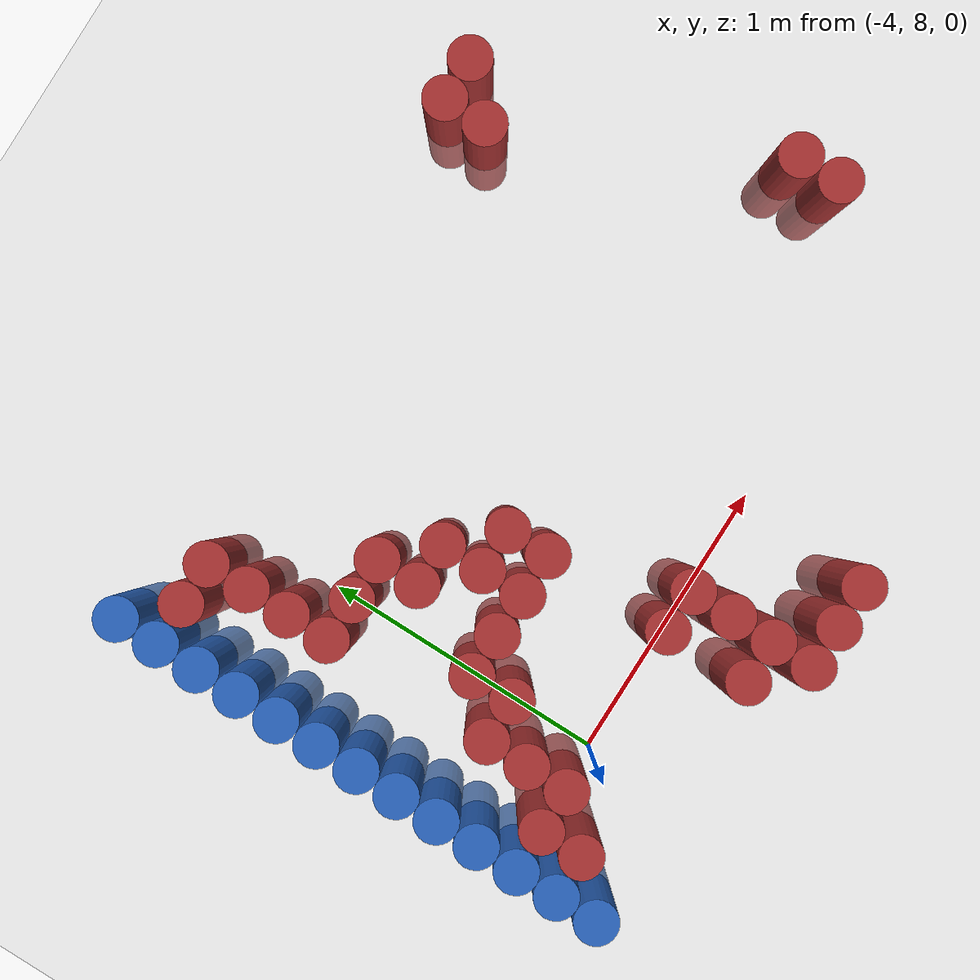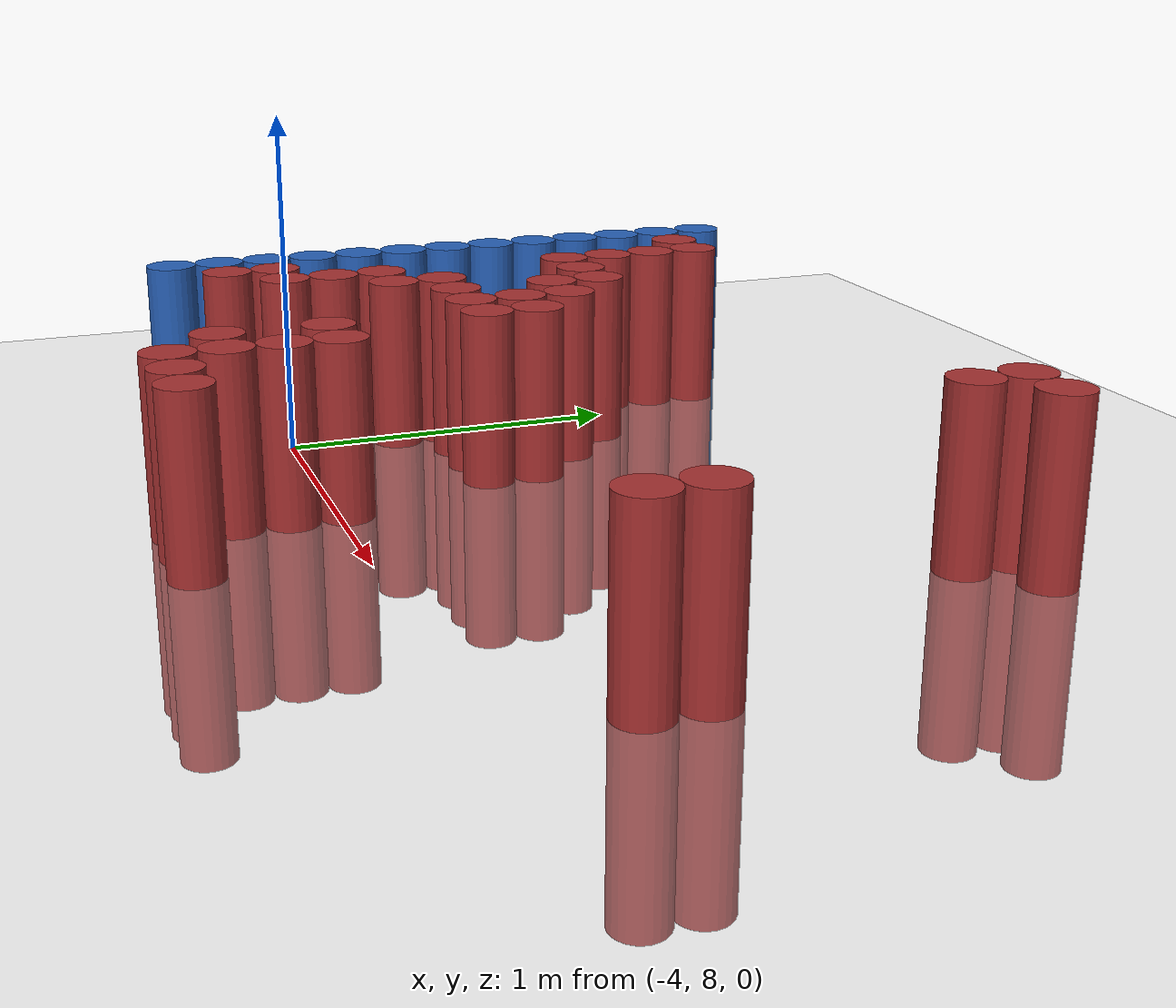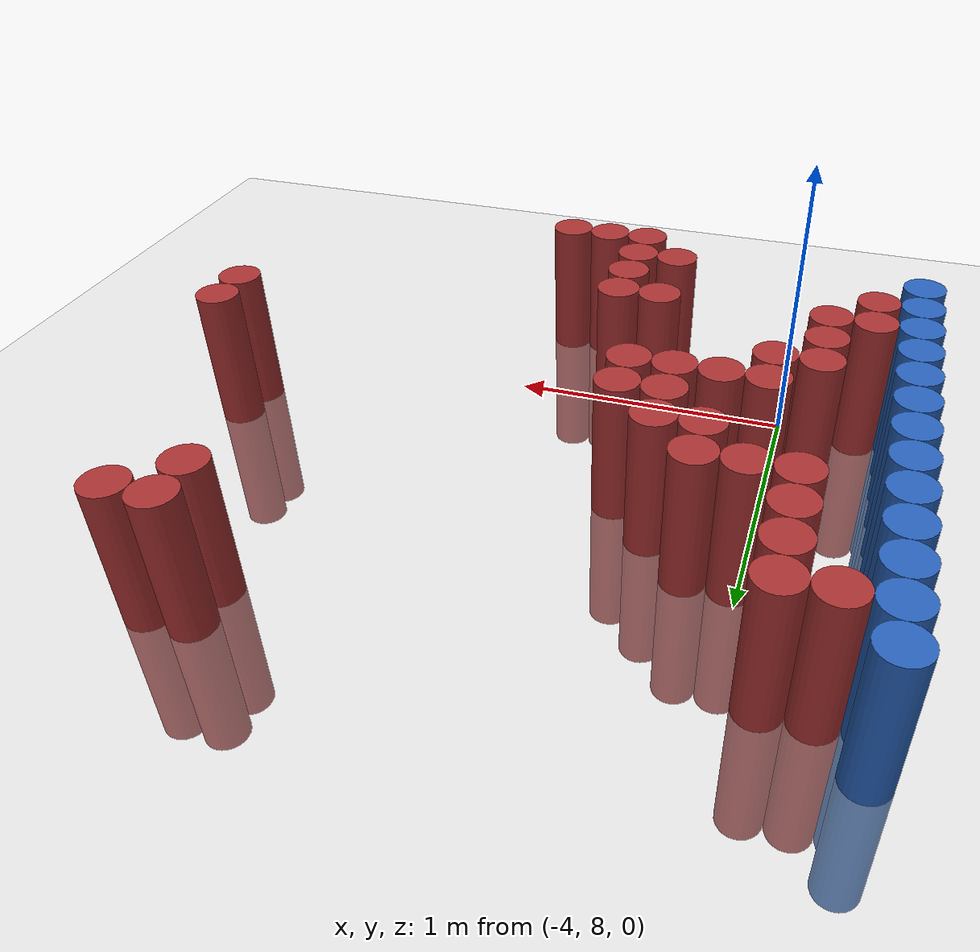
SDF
<sdf version="1.6">
 <world name="default">
  <model name="ground_plane">
   <static>1</static>
   <link name="link">
    <collision name="collision">
     <geometry><plane><normal>0 0 1</normal><size>100 100</size></plane></geometry>
     <surface><friction><ode><mu>100</mu><mu2>50</mu2></ode></friction></surface>
    </collision>
    <visual name="visual">
     <cast_shadows>0</cast_shadows>
     <geometry><plane><normal>0 0 1</normal><size>100 100</size></plane></geometry>
     <material>
      <script><uri>file://media/materials/scripts/gazebo.material</uri><name>Gazebo/Grey</name></script>
     </material>
    </visual>
   </link>
  </model>
  <model name="unit_cylinder_113">
   <static>1</static>
   <pose>-4.425000 7.725000 0.000000 0.000000 0.000000 0.000000</pose>
   <link name="link">
    <inertial>
     <mass>1</mass>
     <inertia><ixx>0.145833</ixx><ixy>0</ixy><ixz>0</ixz><iyy>0.145833</iyy><iyz>0</iyz><izz>0.125</izz></inertia>
    </inertial>
    <collision name="collision">
     <geometry><cylinder><radius>0.075000</radius><length>1</length></cylinder></geometry>
    </collision>
    <visual name="visual">
     <geometry><cylinder><radius>0.075000</radius><length>1</length></cylinder></geometry>
     <material>
      <ambient>0.152000 0.379000 0.720000 1</ambient>
      <diffuse>0.152000 0.379000 0.720000 1</diffuse>
     </material>
     <material>
      <script><name>Gazebo/Grey</name><uri>file://media/materials/scripts/gazebo.material</uri></script>
     </material>
    </visual>
   </link>
  </model>
  <model name="unit_cylinder_114">
   <static>1</static>
   <pose>-4.425000 7.875000 0.000000 0.000000 0.000000 0.000000</pose>
   <link name="link">
    <inertial>
     <mass>1</mass>
     <inertia><ixx>0.145833</ixx><ixy>0</ixy><ixz>0</ixz><iyy>0.145833</iyy><iyz>0</iyz><izz>0.125</izz></inertia>
    </inertial>
    <collision name="collision">
     <geometry><cylinder><radius>0.075000</radius><length>1</length></cylinder></geometry>
    </collision>
    <visual name="visual">
     <geometry><cylinder><radius>0.075000</radius><length>1</length></cylinder></geometry>
     <material>
      <ambient>0.152000 0.379000 0.720000 1</ambient>
      <diffuse>0.152000 0.379000 0.720000 1</diffuse>
     </material>
     <material>
      <script><name>Gazebo/Grey</name><uri>file://media/materials/scripts/gazebo.material</uri></script>
     </material>
    </visual>
   </link>
  </model>
  <model name="unit_cylinder_115">
   <static>1</static>
   <pose>-4.425000 8.025000 0.000000 0.000000 0.000000 0.000000</pose>
   <link name="link">
    <inertial>
     <mass>1</mass>
     <inertia><ixx>0.145833</ixx><ixy>0</ixy><ixz>0</ixz><iyy>0.145833</iyy><iyz>0</iyz><izz>0.125</izz></inertia>
    </inertial>
    <collision name="collision">
     <geometry><cylinder><radius>0.075000</radius><length>1</length></cylinder></geometry>
    </collision>
    <visual name="visual">
     <geometry><cylinder><radius>0.075000</radius><length>1</length></cylinder></geometry>
     <material>
      <ambient>0.152000 0.379000 0.720000 1</ambient>
      <diffuse>0.152000 0.379000 0.720000 1</diffuse>
     </material>
     <material>
      <script><name>Gazebo/Grey</name><uri>file://media/materials/scripts/gazebo.material</uri></script>
     </material>
    </visual>
   </link>
  </model>
  <model name="unit_cylinder_116">
   <static>1</static>
   <pose>-4.425000 8.175000 0.000000 0.000000 0.000000 0.000000</pose>
   <link name="link">
    <inertial>
     <mass>1</mass>
     <inertia><ixx>0.145833</ixx><ixy>0</ixy><ixz>0</ixz><iyy>0.145833</iyy><iyz>0</iyz><izz>0.125</izz></inertia>
    </inertial>
    <collision name="collision">
     <geometry><cylinder><radius>0.075000</radius><length>1</length></cylinder></geometry>
    </collision>
    <visual name="visual">
     <geometry><cylinder><radius>0.075000</radius><length>1</length></cylinder></geometry>
     <material>
      <ambient>0.152000 0.379000 0.720000 1</ambient>
      <diffuse>0.152000 0.379000 0.720000 1</diffuse>
     </material>
     <material>
      <script><name>Gazebo/Grey</name><uri>file://media/materials/scripts/gazebo.material</uri></script>
     </material>
    </visual>
   </link>
  </model>
  <model name="unit_cylinder_117">
   <static>1</static>
   <pose>-4.425000 8.325000 0.000000 0.000000 0.000000 0.000000</pose>
   <link name="link">
    <inertial>
     <mass>1</mass>
     <inertia><ixx>0.145833</ixx><ixy>0</ixy><ixz>0</ixz><iyy>0.145833</iyy><iyz>0</iyz><izz>0.125</izz></inertia>
    </inertial>
    <collision name="collision">
     <geometry><cylinder><radius>0.075000</radius><length>1</length></cylinder></geometry>
    </collision>
    <visual name="visual">
     <geometry><cylinder><radius>0.075000</radius><length>1</length></cylinder></geometry>
     <material>
      <ambient>0.152000 0.379000 0.720000 1</ambient>
      <diffuse>0.152000 0.379000 0.720000 1</diffuse>
     </material>
     <material>
      <script><name>Gazebo/Grey</name><uri>file://media/materials/scripts/gazebo.material</uri></script>
     </material>
    </visual>
   </link>
  </model>
  <model name="unit_cylinder_118">
   <static>1</static>
   <pose>-4.425000 8.475000 0.000000 0.000000 0.000000 0.000000</pose>
   <link name="link">
    <inertial>
     <mass>1</mass>
     <inertia><ixx>0.145833</ixx><ixy>0</ixy><ixz>0</ixz><iyy>0.145833</iyy><iyz>0</iyz><izz>0.125</izz></inertia>
    </inertial>
    <collision name="collision">
     <geometry><cylinder><radius>0.075000</radius><length>1</length></cylinder></geometry>
    </collision>
    <visual name="visual">
     <geometry><cylinder><radius>0.075000</radius><length>1</length></cylinder></geometry>
     <material>
      <ambient>0.152000 0.379000 0.720000 1</ambient>
      <diffuse>0.152000 0.379000 0.720000 1</diffuse>
     </material>
     <material>
      <script><name>Gazebo/Grey</name><uri>file://media/materials/scripts/gazebo.material</uri></script>
     </material>
    </visual>
   </link>
  </model>
  <model name="unit_cylinder_119">
   <static>1</static>
   <pose>-4.425000 8.625000 0.000000 0.000000 0.000000 0.000000</pose>
   <link name="link">
    <inertial>
     <mass>1</mass>
     <inertia><ixx>0.145833</ixx><ixy>0</ixy><ixz>0</ixz><iyy>0.145833</iyy><iyz>0</iyz><izz>0.125</izz></inertia>
    </inertial>
    <collision name="collision">
     <geometry><cylinder><radius>0.075000</radius><length>1</length></cylinder></geometry>
    </collision>
    <visual name="visual">
     <geometry><cylinder><radius>0.075000</radius><length>1</length></cylinder></geometry>
     <material>
      <ambient>0.152000 0.379000 0.720000 1</ambient>
      <diffuse>0.152000 0.379000 0.720000 1</diffuse>
     </material>
     <material>
      <script><name>Gazebo/Grey</name><uri>file://media/materials/scripts/gazebo.material</uri></script>
     </material>
    </visual>
   </link>
  </model>
  <model name="unit_cylinder_120">
   <static>1</static>
   <pose>-4.425000 8.775000 0.000000 0.000000 0.000000 0.000000</pose>
   <link name="link">
    <inertial>
     <mass>1</mass>
     <inertia><ixx>0.145833</ixx><ixy>0</ixy><ixz>0</ixz><iyy>0.145833</iyy><iyz>0</iyz><izz>0.125</izz></inertia>
    </inertial>
    <collision name="collision">
     <geometry><cylinder><radius>0.075000</radius><length>1</length></cylinder></geometry>
    </collision>
    <visual name="visual">
     <geometry><cylinder><radius>0.075000</radius><length>1</length></cylinder></geometry>
     <material>
      <ambient>0.152000 0.379000 0.720000 1</ambient>
      <diffuse>0.152000 0.379000 0.720000 1</diffuse>
     </material>
     <material>
      <script><name>Gazebo/Grey</name><uri>file://media/materials/scripts/gazebo.material</uri></script>
     </material>
    </visual>
   </link>
  </model>
  <model name="unit_cylinder_121">
   <static>1</static>
   <pose>-4.425000 8.925000 0.000000 0.000000 0.000000 0.000000</pose>
   <link name="link">
    <inertial>
     <mass>1</mass>
     <inertia><ixx>0.145833</ixx><ixy>0</ixy><ixz>0</ixz><iyy>0.145833</iyy><iyz>0</iyz><izz>0.125</izz></inertia>
    </inertial>
    <collision name="collision">
     <geometry><cylinder><radius>0.075000</radius><length>1</length></cylinder></geometry>
    </collision>
    <visual name="visual">
     <geometry><cylinder><radius>0.075000</radius><length>1</length></cylinder></geometry>
     <material>
      <ambient>0.152000 0.379000 0.720000 1</ambient>
      <diffuse>0.152000 0.379000 0.720000 1</diffuse>
     </material>
     <material>
      <script><name>Gazebo/Grey</name><uri>file://media/materials/scripts/gazebo.material</uri></script>
     </material>
    </visual>
   </link>
  </model>
  <model name="unit_cylinder_122">
   <static>1</static>
   <pose>-4.425000 9.075000 0.000000 0.000000 0.000000 0.000000</pose>
   <link name="link">
    <inertial>
     <mass>1</mass>
     <inertia><ixx>0.145833</ixx><ixy>0</ixy><ixz>0</ixz><iyy>0.145833</iyy><iyz>0</iyz><izz>0.125</izz></inertia>
    </inertial>
    <collision name="collision">
     <geometry><cylinder><radius>0.075000</radius><length>1</length></cylinder></geometry>
    </collision>
    <visual name="visual">
     <geometry><cylinder><radius>0.075000</radius><length>1</length></cylinder></geometry>
     <material>
      <ambient>0.152000 0.379000 0.720000 1</ambient>
      <diffuse>0.152000 0.379000 0.720000 1</diffuse>
     </material>
     <material>
      <script><name>Gazebo/Grey</name><uri>file://media/materials/scripts/gazebo.material</uri></script>
     </material>
    </visual>
   </link>
  </model>
  <model name="unit_cylinder_123">
   <static>1</static>
   <pose>-4.425000 9.225000 0.000000 0.000000 0.000000 0.000000</pose>
   <link name="link">
    <inertial>
     <mass>1</mass>
     <inertia><ixx>0.145833</ixx><ixy>0</ixy><ixz>0</ixz><iyy>0.145833</iyy><iyz>0</iyz><izz>0.125</izz></inertia>
    </inertial>
    <collision name="collision">
     <geometry><cylinder><radius>0.075000</radius><length>1</length></cylinder></geometry>
    </collision>
    <visual name="visual">
     <geometry><cylinder><radius>0.075000</radius><length>1</length></cylinder></geometry>
     <material>
      <ambient>0.152000 0.379000 0.720000 1</ambient>
      <diffuse>0.152000 0.379000 0.720000 1</diffuse>
     </material>
     <material>
      <script><name>Gazebo/Grey</name><uri>file://media/materials/scripts/gazebo.material</uri></script>
     </material>
    </visual>
   </link>
  </model>
  <model name="unit_cylinder_124">
   <static>1</static>
   <pose>-4.425000 9.375000 0.000000 0.000000 0.000000 0.000000</pose>
   <link name="link">
    <inertial>
     <mass>1</mass>
     <inertia><ixx>0.145833</ixx><ixy>0</ixy><ixz>0</ixz><iyy>0.145833</iyy><iyz>0</iyz><izz>0.125</izz></inertia>
    </inertial>
    <collision name="collision">
     <geometry><cylinder><radius>0.075000</radius><length>1</length></cylinder></geometry>
    </collision>
    <visual name="visual">
     <geometry><cylinder><radius>0.075000</radius><length>1</length></cylinder></geometry>
     <material>
      <ambient>0.152000 0.379000 0.720000 1</ambient>
      <diffuse>0.152000 0.379000 0.720000 1</diffuse>
     </material>
     <material>
      <script><name>Gazebo/Grey</name><uri>file://media/materials/scripts/gazebo.material</uri></script>
     </material>
    </visual>
   </link>
  </model>
  <model name="unit_cylinder_125">
   <static>1</static>
   <pose>-4.425000 9.525000 0.000000 0.000000 0.000000 0.000000</pose>
   <link name="link">
    <inertial>
     <mass>1</mass>
     <inertia><ixx>0.145833</ixx><ixy>0</ixy><ixz>0</ixz><iyy>0.145833</iyy><iyz>0</iyz><izz>0.125</izz></inertia>
    </inertial>
    <collision name="collision">
     <geometry><cylinder><radius>0.075000</radius><length>1</length></cylinder></geometry>
    </collision>
    <visual name="visual">
     <geometry><cylinder><radius>0.075000</radius><length>1</length></cylinder></geometry>
     <material>
      <ambient>0.152000 0.379000 0.720000 1</ambient>
      <diffuse>0.152000 0.379000 0.720000 1</diffuse>
     </material>
     <material>
      <script><name>Gazebo/Grey</name><uri>file://media/materials/scripts/gazebo.material</uri></script>
     </material>
    </visual>
   </link>
  </model>
  <model name="unit_cylinder_133">
   <static>1</static>
   <pose>-4.275000 7.875000 0.000000 0.000000 0.000000 0.000000</pose>
   <link name="link">
    <inertial>
     <mass>1</mass>
     <inertia><ixx>0.145833</ixx><ixy>0</ixy><ixz>0</ixz><iyy>0.145833</iyy><iyz>0</iyz><izz>0.125</izz></inertia>
    </inertial>
    <collision name="collision">
     <geometry><cylinder><radius>0.075000</radius><length>1</length></cylinder></geometry>
    </collision>
    <visual name="visual">
     <geometry><cylinder><radius>0.075000</radius><length>1</length></cylinder></geometry>
     <material>
      <ambient>0.648000 0.192000 0.192000 1</ambient>
      <diffuse>0.648000 0.192000 0.192000 1</diffuse>
     </material>
     <material>
      <script><name>Gazebo/Grey</name><uri>file://media/materials/scripts/gazebo.material</uri></script>
     </material>
    </visual>
   </link>
  </model>
  <model name="unit_cylinder_134">
   <static>1</static>
   <pose>-4.275000 8.025000 0.000000 0.000000 0.000000 0.000000</pose>
   <link name="link">
    <inertial>
     <mass>1</mass>
     <inertia><ixx>0.145833</ixx><ixy>0</ixy><ixz>0</ixz><iyy>0.145833</iyy><iyz>0</iyz><izz>0.125</izz></inertia>
    </inertial>
    <collision name="collision">
     <geometry><cylinder><radius>0.075000</radius><length>1</length></cylinder></geometry>
    </collision>
    <visual name="visual">
     <geometry><cylinder><radius>0.075000</radius><length>1</length></cylinder></geometry>
     <material>
      <ambient>0.648000 0.192000 0.192000 1</ambient>
      <diffuse>0.648000 0.192000 0.192000 1</diffuse>
     </material>
     <material>
      <script><name>Gazebo/Grey</name><uri>file://media/materials/scripts/gazebo.material</uri></script>
     </material>
    </visual>
   </link>
  </model>
  <model name="unit_cylinder_135">
   <static>1</static>
   <pose>-4.275000 9.375000 0.000000 0.000000 0.000000 0.000000</pose>
   <link name="link">
    <inertial>
     <mass>1</mass>
     <inertia><ixx>0.145833</ixx><ixy>0</ixy><ixz>0</ixz><iyy>0.145833</iyy><iyz>0</iyz><izz>0.125</izz></inertia>
    </inertial>
    <collision name="collision">
     <geometry><cylinder><radius>0.075000</radius><length>1</length></cylinder></geometry>
    </collision>
    <visual name="visual">
     <geometry><cylinder><radius>0.075000</radius><length>1</length></cylinder></geometry>
     <material>
      <ambient>0.648000 0.192000 0.192000 1</ambient>
      <diffuse>0.648000 0.192000 0.192000 1</diffuse>
     </material>
     <material>
      <script><name>Gazebo/Grey</name><uri>file://media/materials/scripts/gazebo.material</uri></script>
     </material>
    </visual>
   </link>
  </model>
  <model name="unit_cylinder_138">
   <static>1</static>
   <pose>-4.125000 8.025000 0.000000 0.000000 0.000000 0.000000</pose>
   <link name="link">
    <inertial>
     <mass>1</mass>
     <inertia><ixx>0.145833</ixx><ixy>0</ixy><ixz>0</ixz><iyy>0.145833</iyy><iyz>0</iyz><izz>0.125</izz></inertia>
    </inertial>
    <collision name="collision">
     <geometry><cylinder><radius>0.075000</radius><length>1</length></cylinder></geometry>
    </collision>
    <visual name="visual">
     <geometry><cylinder><radius>0.075000</radius><length>1</length></cylinder></geometry>
     <material>
      <ambient>0.648000 0.192000 0.192000 1</ambient>
      <diffuse>0.648000 0.192000 0.192000 1</diffuse>
     </material>
     <material>
      <script><name>Gazebo/Grey</name><uri>file://media/materials/scripts/gazebo.material</uri></script>
     </material>
    </visual>
   </link>
  </model>
  <model name="unit_cylinder_139">
   <static>1</static>
   <pose>-4.125000 8.175000 0.000000 0.000000 0.000000 0.000000</pose>
   <link name="link">
    <inertial>
     <mass>1</mass>
     <inertia><ixx>0.145833</ixx><ixy>0</ixy><ixz>0</ixz><iyy>0.145833</iyy><iyz>0</iyz><izz>0.125</izz></inertia>
    </inertial>
    <collision name="collision">
     <geometry><cylinder><radius>0.075000</radius><length>1</length></cylinder></geometry>
    </collision>
    <visual name="visual">
     <geometry><cylinder><radius>0.075000</radius><length>1</length></cylinder></geometry>
     <material>
      <ambient>0.648000 0.192000 0.192000 1</ambient>
      <diffuse>0.648000 0.192000 0.192000 1</diffuse>
     </material>
     <material>
      <script><name>Gazebo/Grey</name><uri>file://media/materials/scripts/gazebo.material</uri></script>
     </material>
    </visual>
   </link>
  </model>
  <model name="unit_cylinder_140">
   <static>1</static>
   <pose>-4.125000 8.325000 0.000000 0.000000 0.000000 0.000000</pose>
   <link name="link">
    <inertial>
     <mass>1</mass>
     <inertia><ixx>0.145833</ixx><ixy>0</ixy><ixz>0</ixz><iyy>0.145833</iyy><iyz>0</iyz><izz>0.125</izz></inertia>
    </inertial>
    <collision name="collision">
     <geometry><cylinder><radius>0.075000</radius><length>1</length></cylinder></geometry>
    </collision>
    <visual name="visual">
     <geometry><cylinder><radius>0.075000</radius><length>1</length></cylinder></geometry>
     <material>
      <ambient>0.648000 0.192000 0.192000 1</ambient>
      <diffuse>0.648000 0.192000 0.192000 1</diffuse>
     </material>
     <material>
      <script><name>Gazebo/Grey</name><uri>file://media/materials/scripts/gazebo.material</uri></script>
     </material>
    </visual>
   </link>
  </model>
  <model name="unit_cylinder_141">
   <static>1</static>
   <pose>-4.125000 8.925000 0.000000 0.000000 0.000000 0.000000</pose>
   <link name="link">
    <inertial>
     <mass>1</mass>
     <inertia><ixx>0.145833</ixx><ixy>0</ixy><ixz>0</ixz><iyy>0.145833</iyy><iyz>0</iyz><izz>0.125</izz></inertia>
    </inertial>
    <collision name="collision">
     <geometry><cylinder><radius>0.075000</radius><length>1</length></cylinder></geometry>
    </collision>
    <visual name="visual">
     <geometry><cylinder><radius>0.075000</radius><length>1</length></cylinder></geometry>
     <material>
      <ambient>0.648000 0.192000 0.192000 1</ambient>
      <diffuse>0.648000 0.192000 0.192000 1</diffuse>
     </material>
     <material>
      <script><name>Gazebo/Grey</name><uri>file://media/materials/scripts/gazebo.material</uri></script>
     </material>
    </visual>
   </link>
  </model>
  <model name="unit_cylinder_142">
   <static>1</static>
   <pose>-4.125000 9.075000 0.000000 0.000000 0.000000 0.000000</pose>
   <link name="link">
    <inertial>
     <mass>1</mass>
     <inertia><ixx>0.145833</ixx><ixy>0</ixy><ixz>0</ixz><iyy>0.145833</iyy><iyz>0</iyz><izz>0.125</izz></inertia>
    </inertial>
    <collision name="collision">
     <geometry><cylinder><radius>0.075000</radius><length>1</length></cylinder></geometry>
    </collision>
    <visual name="visual">
     <geometry><cylinder><radius>0.075000</radius><length>1</length></cylinder></geometry>
     <material>
      <ambient>0.648000 0.192000 0.192000 1</ambient>
      <diffuse>0.648000 0.192000 0.192000 1</diffuse>
     </material>
     <material>
      <script><name>Gazebo/Grey</name><uri>file://media/materials/scripts/gazebo.material</uri></script>
     </material>
    </visual>
   </link>
  </model>
  <model name="unit_cylinder_143">
   <static>1</static>
   <pose>-4.125000 9.225000 0.000000 0.000000 0.000000 0.000000</pose>
   <link name="link">
    <inertial>
     <mass>1</mass>
     <inertia><ixx>0.145833</ixx><ixy>0</ixy><ixz>0</ixz><iyy>0.145833</iyy><iyz>0</iyz><izz>0.125</izz></inertia>
    </inertial>
    <collision name="collision">
     <geometry><cylinder><radius>0.075000</radius><length>1</length></cylinder></geometry>
    </collision>
    <visual name="visual">
     <geometry><cylinder><radius>0.075000</radius><length>1</length></cylinder></geometry>
     <material>
      <ambient>0.648000 0.192000 0.192000 1</ambient>
      <diffuse>0.648000 0.192000 0.192000 1</diffuse>
     </material>
     <material>
      <script><name>Gazebo/Grey</name><uri>file://media/materials/scripts/gazebo.material</uri></script>
     </material>
    </visual>
   </link>
  </model>
  <model name="unit_cylinder_144">
   <static>1</static>
   <pose>-4.125000 9.375000 0.000000 0.000000 0.000000 0.000000</pose>
   <link name="link">
    <inertial>
     <mass>1</mass>
     <inertia><ixx>0.145833</ixx><ixy>0</ixy><ixz>0</ixz><iyy>0.145833</iyy><iyz>0</iyz><izz>0.125</izz></inertia>
    </inertial>
    <collision name="collision">
     <geometry><cylinder><radius>0.075000</radius><length>1</length></cylinder></geometry>
    </collision>
    <visual name="visual">
     <geometry><cylinder><radius>0.075000</radius><length>1</length></cylinder></geometry>
     <material>
      <ambient>0.648000 0.192000 0.192000 1</ambient>
      <diffuse>0.648000 0.192000 0.192000 1</diffuse>
     </material>
     <material>
      <script><name>Gazebo/Grey</name><uri>file://media/materials/scripts/gazebo.material</uri></script>
     </material>
    </visual>
   </link>
  </model>
  <model name="unit_cylinder_147">
   <static>1</static>
   <pose>-3.975000 8.325000 0.000000 0.000000 0.000000 0.000000</pose>
   <link name="link">
    <inertial>
     <mass>1</mass>
     <inertia><ixx>0.145833</ixx><ixy>0</ixy><ixz>0</ixz><iyy>0.145833</iyy><iyz>0</iyz><izz>0.125</izz></inertia>
    </inertial>
    <collision name="collision">
     <geometry><cylinder><radius>0.075000</radius><length>1</length></cylinder></geometry>
    </collision>
    <visual name="visual">
     <geometry><cylinder><radius>0.075000</radius><length>1</length></cylinder></geometry>
     <material>
      <ambient>0.648000 0.192000 0.192000 1</ambient>
      <diffuse>0.648000 0.192000 0.192000 1</diffuse>
     </material>
     <material>
      <script><name>Gazebo/Grey</name><uri>file://media/materials/scripts/gazebo.material</uri></script>
     </material>
    </visual>
   </link>
  </model>
  <model name="unit_cylinder_148">
   <static>1</static>
   <pose>-3.975000 8.475000 0.000000 0.000000 0.000000 0.000000</pose>
   <link name="link">
    <inertial>
     <mass>1</mass>
     <inertia><ixx>0.145833</ixx><ixy>0</ixy><ixz>0</ixz><iyy>0.145833</iyy><iyz>0</iyz><izz>0.125</izz></inertia>
    </inertial>
    <collision name="collision">
     <geometry><cylinder><radius>0.075000</radius><length>1</length></cylinder></geometry>
    </collision>
    <visual name="visual">
     <geometry><cylinder><radius>0.075000</radius><length>1</length></cylinder></geometry>
     <material>
      <ambient>0.648000 0.192000 0.192000 1</ambient>
      <diffuse>0.648000 0.192000 0.192000 1</diffuse>
     </material>
     <material>
      <script><name>Gazebo/Grey</name><uri>file://media/materials/scripts/gazebo.material</uri></script>
     </material>
    </visual>
   </link>
  </model>
  <model name="unit_cylinder_149">
   <static>1</static>
   <pose>-3.975000 8.925000 0.000000 0.000000 0.000000 0.000000</pose>
   <link name="link">
    <inertial>
     <mass>1</mass>
     <inertia><ixx>0.145833</ixx><ixy>0</ixy><ixz>0</ixz><iyy>0.145833</iyy><iyz>0</iyz><izz>0.125</izz></inertia>
    </inertial>
    <collision name="collision">
     <geometry><cylinder><radius>0.075000</radius><length>1</length></cylinder></geometry>
    </collision>
    <visual name="visual">
     <geometry><cylinder><radius>0.075000</radius><length>1</length></cylinder></geometry>
     <material>
      <ambient>0.648000 0.192000 0.192000 1</ambient>
      <diffuse>0.648000 0.192000 0.192000 1</diffuse>
     </material>
     <material>
      <script><name>Gazebo/Grey</name><uri>file://media/materials/scripts/gazebo.material</uri></script>
     </material>
    </visual>
   </link>
  </model>
  <model name="unit_cylinder_152">
   <static>1</static>
   <pose>-3.825000 8.475000 0.000000 0.000000 0.000000 0.000000</pose>
   <link name="link">
    <inertial>
     <mass>1</mass>
     <inertia><ixx>0.145833</ixx><ixy>0</ixy><ixz>0</ixz><iyy>0.145833</iyy><iyz>0</iyz><izz>0.125</izz></inertia>
    </inertial>
    <collision name="collision">
     <geometry><cylinder><radius>0.075000</radius><length>1</length></cylinder></geometry>
    </collision>
    <visual name="visual">
     <geometry><cylinder><radius>0.075000</radius><length>1</length></cylinder></geometry>
     <material>
      <ambient>0.648000 0.192000 0.192000 1</ambient>
      <diffuse>0.648000 0.192000 0.192000 1</diffuse>
     </material>
     <material>
      <script><name>Gazebo/Grey</name><uri>file://media/materials/scripts/gazebo.material</uri></script>
     </material>
    </visual>
   </link>
  </model>
  <model name="unit_cylinder_153">
   <static>1</static>
   <pose>-3.825000 8.775000 0.000000 0.000000 0.000000 0.000000</pose>
   <link name="link">
    <inertial>
     <mass>1</mass>
     <inertia><ixx>0.145833</ixx><ixy>0</ixy><ixz>0</ixz><iyy>0.145833</iyy><iyz>0</iyz><izz>0.125</izz></inertia>
    </inertial>
    <collision name="collision">
     <geometry><cylinder><radius>0.075000</radius><length>1</length></cylinder></geometry>
    </collision>
    <visual name="visual">
     <geometry><cylinder><radius>0.075000</radius><length>1</length></cylinder></geometry>
     <material>
      <ambient>0.648000 0.192000 0.192000 1</ambient>
      <diffuse>0.648000 0.192000 0.192000 1</diffuse>
     </material>
     <material>
      <script><name>Gazebo/Grey</name><uri>file://media/materials/scripts/gazebo.material</uri></script>
     </material>
    </visual>
   </link>
  </model>
  <model name="unit_cylinder_154">
   <static>1</static>
   <pose>-3.825000 8.925000 0.000000 0.000000 0.000000 0.000000</pose>
   <link name="link">
    <inertial>
     <mass>1</mass>
     <inertia><ixx>0.145833</ixx><ixy>0</ixy><ixz>0</ixz><iyy>0.145833</iyy><iyz>0</iyz><izz>0.125</izz></inertia>
    </inertial>
    <collision name="collision">
     <geometry><cylinder><radius>0.075000</radius><length>1</length></cylinder></geometry>
    </collision>
    <visual name="visual">
     <geometry><cylinder><radius>0.075000</radius><length>1</length></cylinder></geometry>
     <material>
      <ambient>0.648000 0.192000 0.192000 1</ambient>
      <diffuse>0.648000 0.192000 0.192000 1</diffuse>
     </material>
     <material>
      <script><name>Gazebo/Grey</name><uri>file://media/materials/scripts/gazebo.material</uri></script>
     </material>
    </visual>
   </link>
  </model>
  <model name="unit_cylinder_159">
   <static>1</static>
   <pose>-3.675000 8.475000 0.000000 0.000000 0.000000 0.000000</pose>
   <link name="link">
    <inertial>
     <mass>1</mass>
     <inertia><ixx>0.145833</ixx><ixy>0</ixy><ixz>0</ixz><iyy>0.145833</iyy><iyz>0</iyz><izz>0.125</izz></inertia>
    </inertial>
    <collision name="collision">
     <geometry><cylinder><radius>0.075000</radius><length>1</length></cylinder></geometry>
    </collision>
    <visual name="visual">
     <geometry><cylinder><radius>0.075000</radius><length>1</length></cylinder></geometry>
     <material>
      <ambient>0.648000 0.192000 0.192000 1</ambient>
      <diffuse>0.648000 0.192000 0.192000 1</diffuse>
     </material>
     <material>
      <script><name>Gazebo/Grey</name><uri>file://media/materials/scripts/gazebo.material</uri></script>
     </material>
    </visual>
   </link>
  </model>
  <model name="unit_cylinder_160">
   <static>1</static>
   <pose>-3.675000 8.625000 0.000000 0.000000 0.000000 0.000000</pose>
   <link name="link">
    <inertial>
     <mass>1</mass>
     <inertia><ixx>0.145833</ixx><ixy>0</ixy><ixz>0</ixz><iyy>0.145833</iyy><iyz>0</iyz><izz>0.125</izz></inertia>
    </inertial>
    <collision name="collision">
     <geometry><cylinder><radius>0.075000</radius><length>1</length></cylinder></geometry>
    </collision>
    <visual name="visual">
     <geometry><cylinder><radius>0.075000</radius><length>1</length></cylinder></geometry>
     <material>
      <ambient>0.648000 0.192000 0.192000 1</ambient>
      <diffuse>0.648000 0.192000 0.192000 1</diffuse>
     </material>
     <material>
      <script><name>Gazebo/Grey</name><uri>file://media/materials/scripts/gazebo.material</uri></script>
     </material>
    </visual>
   </link>
  </model>
  <model name="unit_cylinder_161">
   <static>1</static>
   <pose>-3.675000 8.775000 0.000000 0.000000 0.000000 0.000000</pose>
   <link name="link">
    <inertial>
     <mass>1</mass>
     <inertia><ixx>0.145833</ixx><ixy>0</ixy><ixz>0</ixz><iyy>0.145833</iyy><iyz>0</iyz><izz>0.125</izz></inertia>
    </inertial>
    <collision name="collision">
     <geometry><cylinder><radius>0.075000</radius><length>1</length></cylinder></geometry>
    </collision>
    <visual name="visual">
     <geometry><cylinder><radius>0.075000</radius><length>1</length></cylinder></geometry>
     <material>
      <ambient>0.648000 0.192000 0.192000 1</ambient>
      <diffuse>0.648000 0.192000 0.192000 1</diffuse>
     </material>
     <material>
      <script><name>Gazebo/Grey</name><uri>file://media/materials/scripts/gazebo.material</uri></script>
     </material>
    </visual>
   </link>
  </model>
  <model name="unit_cylinder_167">
   <static>1</static>
   <pose>-3.525000 7.725000 0.000000 0.000000 0.000000 0.000000</pose>
   <link name="link">
    <inertial>
     <mass>1</mass>
     <inertia><ixx>0.145833</ixx><ixy>0</ixy><ixz>0</ixz><iyy>0.145833</iyy><iyz>0</iyz><izz>0.125</izz></inertia>
    </inertial>
    <collision name="collision">
     <geometry><cylinder><radius>0.075000</radius><length>1</length></cylinder></geometry>
    </collision>
    <visual name="visual">
     <geometry><cylinder><radius>0.075000</radius><length>1</length></cylinder></geometry>
     <material>
      <ambient>0.648000 0.192000 0.192000 1</ambient>
      <diffuse>0.648000 0.192000 0.192000 1</diffuse>
     </material>
     <material>
      <script><name>Gazebo/Grey</name><uri>file://media/materials/scripts/gazebo.material</uri></script>
     </material>
    </visual>
   </link>
  </model>
  <model name="unit_cylinder_168">
   <static>1</static>
   <pose>-3.525000 8.025000 0.000000 0.000000 0.000000 0.000000</pose>
   <link name="link">
    <inertial>
     <mass>1</mass>
     <inertia><ixx>0.145833</ixx><ixy>0</ixy><ixz>0</ixz><iyy>0.145833</iyy><iyz>0</iyz><izz>0.125</izz></inertia>
    </inertial>
    <collision name="collision">
     <geometry><cylinder><radius>0.075000</radius><length>1</length></cylinder></geometry>
    </collision>
    <visual name="visual">
     <geometry><cylinder><radius>0.075000</radius><length>1</length></cylinder></geometry>
     <material>
      <ambient>0.648000 0.192000 0.192000 1</ambient>
      <diffuse>0.648000 0.192000 0.192000 1</diffuse>
     </material>
     <material>
      <script><name>Gazebo/Grey</name><uri>file://media/materials/scripts/gazebo.material</uri></script>
     </material>
    </visual>
   </link>
  </model>
  <model name="unit_cylinder_169">
   <static>1</static>
   <pose>-3.525000 8.475000 0.000000 0.000000 0.000000 0.000000</pose>
   <link name="link">
    <inertial>
     <mass>1</mass>
     <inertia><ixx>0.145833</ixx><ixy>0</ixy><ixz>0</ixz><iyy>0.145833</iyy><iyz>0</iyz><izz>0.125</izz></inertia>
    </inertial>
    <collision name="collision">
     <geometry><cylinder><radius>0.075000</radius><length>1</length></cylinder></geometry>
    </collision>
    <visual name="visual">
     <geometry><cylinder><radius>0.075000</radius><length>1</length></cylinder></geometry>
     <material>
      <ambient>0.648000 0.192000 0.192000 1</ambient>
      <diffuse>0.648000 0.192000 0.192000 1</diffuse>
     </material>
     <material>
      <script><name>Gazebo/Grey</name><uri>file://media/materials/scripts/gazebo.material</uri></script>
     </material>
    </visual>
   </link>
  </model>
  <model name="unit_cylinder_170">
   <static>1</static>
   <pose>-3.525000 8.625000 0.000000 0.000000 0.000000 0.000000</pose>
   <link name="link">
    <inertial>
     <mass>1</mass>
     <inertia><ixx>0.145833</ixx><ixy>0</ixy><ixz>0</ixz><iyy>0.145833</iyy><iyz>0</iyz><izz>0.125</izz></inertia>
    </inertial>
    <collision name="collision">
     <geometry><cylinder><radius>0.075000</radius><length>1</length></cylinder></geometry>
    </collision>
    <visual name="visual">
     <geometry><cylinder><radius>0.075000</radius><length>1</length></cylinder></geometry>
     <material>
      <ambient>0.648000 0.192000 0.192000 1</ambient>
      <diffuse>0.648000 0.192000 0.192000 1</diffuse>
     </material>
     <material>
      <script><name>Gazebo/Grey</name><uri>file://media/materials/scripts/gazebo.material</uri></script>
     </material>
    </visual>
   </link>
  </model>
  <model name="unit_cylinder_176">
   <static>1</static>
   <pose>-3.375000 7.575000 0.000000 0.000000 0.000000 0.000000</pose>
   <link name="link">
    <inertial>
     <mass>1</mass>
     <inertia><ixx>0.145833</ixx><ixy>0</ixy><ixz>0</ixz><iyy>0.145833</iyy><iyz>0</iyz><izz>0.125</izz></inertia>
    </inertial>
    <collision name="collision">
     <geometry><cylinder><radius>0.075000</radius><length>1</length></cylinder></geometry>
    </collision>
    <visual name="visual">
     <geometry><cylinder><radius>0.075000</radius><length>1</length></cylinder></geometry>
     <material>
      <ambient>0.648000 0.192000 0.192000 1</ambient>
      <diffuse>0.648000 0.192000 0.192000 1</diffuse>
     </material>
     <material>
      <script><name>Gazebo/Grey</name><uri>file://media/materials/scripts/gazebo.material</uri></script>
     </material>
    </visual>
   </link>
  </model>
  <model name="unit_cylinder_177">
   <static>1</static>
   <pose>-3.375000 7.725000 0.000000 0.000000 0.000000 0.000000</pose>
   <link name="link">
    <inertial>
     <mass>1</mass>
     <inertia><ixx>0.145833</ixx><ixy>0</ixy><ixz>0</ixz><iyy>0.145833</iyy><iyz>0</iyz><izz>0.125</izz></inertia>
    </inertial>
    <collision name="collision">
     <geometry><cylinder><radius>0.075000</radius><length>1</length></cylinder></geometry>
    </collision>
    <visual name="visual">
     <geometry><cylinder><radius>0.075000</radius><length>1</length></cylinder></geometry>
     <material>
      <ambient>0.648000 0.192000 0.192000 1</ambient>
      <diffuse>0.648000 0.192000 0.192000 1</diffuse>
     </material>
     <material>
      <script><name>Gazebo/Grey</name><uri>file://media/materials/scripts/gazebo.material</uri></script>
     </material>
    </visual>
   </link>
  </model>
  <model name="unit_cylinder_178">
   <static>1</static>
   <pose>-3.375000 7.875000 0.000000 0.000000 0.000000 0.000000</pose>
   <link name="link">
    <inertial>
     <mass>1</mass>
     <inertia><ixx>0.145833</ixx><ixy>0</ixy><ixz>0</ixz><iyy>0.145833</iyy><iyz>0</iyz><izz>0.125</izz></inertia>
    </inertial>
    <collision name="collision">
     <geometry><cylinder><radius>0.075000</radius><length>1</length></cylinder></geometry>
    </collision>
    <visual name="visual">
     <geometry><cylinder><radius>0.075000</radius><length>1</length></cylinder></geometry>
     <material>
      <ambient>0.648000 0.192000 0.192000 1</ambient>
      <diffuse>0.648000 0.192000 0.192000 1</diffuse>
     </material>
     <material>
      <script><name>Gazebo/Grey</name><uri>file://media/materials/scripts/gazebo.material</uri></script>
     </material>
    </visual>
   </link>
  </model>
  <model name="unit_cylinder_179">
   <static>1</static>
   <pose>-3.375000 8.025000 0.000000 0.000000 0.000000 0.000000</pose>
   <link name="link">
    <inertial>
     <mass>1</mass>
     <inertia><ixx>0.145833</ixx><ixy>0</ixy><ixz>0</ixz><iyy>0.145833</iyy><iyz>0</iyz><izz>0.125</izz></inertia>
    </inertial>
    <collision name="collision">
     <geometry><cylinder><radius>0.075000</radius><length>1</length></cylinder></geometry>
    </collision>
    <visual name="visual">
     <geometry><cylinder><radius>0.075000</radius><length>1</length></cylinder></geometry>
     <material>
      <ambient>0.648000 0.192000 0.192000 1</ambient>
      <diffuse>0.648000 0.192000 0.192000 1</diffuse>
     </material>
     <material>
      <script><name>Gazebo/Grey</name><uri>file://media/materials/scripts/gazebo.material</uri></script>
     </material>
    </visual>
   </link>
  </model>
  <model name="unit_cylinder_188">
   <static>1</static>
   <pose>-3.225000 7.575000 0.000000 0.000000 0.000000 0.000000</pose>
   <link name="link">
    <inertial>
     <mass>1</mass>
     <inertia><ixx>0.145833</ixx><ixy>0</ixy><ixz>0</ixz><iyy>0.145833</iyy><iyz>0</iyz><izz>0.125</izz></inertia>
    </inertial>
    <collision name="collision">
     <geometry><cylinder><radius>0.075000</radius><length>1</length></cylinder></geometry>
    </collision>
    <visual name="visual">
     <geometry><cylinder><radius>0.075000</radius><length>1</length></cylinder></geometry>
     <material>
      <ambient>0.648000 0.192000 0.192000 1</ambient>
      <diffuse>0.648000 0.192000 0.192000 1</diffuse>
     </material>
     <material>
      <script><name>Gazebo/Grey</name><uri>file://media/materials/scripts/gazebo.material</uri></script>
     </material>
    </visual>
   </link>
  </model>
  <model name="unit_cylinder_196">
   <static>1</static>
   <pose>-3.075000 7.575000 0.000000 0.000000 0.000000 0.000000</pose>
   <link name="link">
    <inertial>
     <mass>1</mass>
     <inertia><ixx>0.145833</ixx><ixy>0</ixy><ixz>0</ixz><iyy>0.145833</iyy><iyz>0</iyz><izz>0.125</izz></inertia>
    </inertial>
    <collision name="collision">
     <geometry><cylinder><radius>0.075000</radius><length>1</length></cylinder></geometry>
    </collision>
    <visual name="visual">
     <geometry><cylinder><radius>0.075000</radius><length>1</length></cylinder></geometry>
     <material>
      <ambient>0.648000 0.192000 0.192000 1</ambient>
      <diffuse>0.648000 0.192000 0.192000 1</diffuse>
     </material>
     <material>
      <script><name>Gazebo/Grey</name><uri>file://media/materials/scripts/gazebo.material</uri></script>
     </material>
    </visual>
   </link>
  </model>
  <model name="unit_cylinder_207">
   <static>1</static>
   <pose>-2.475000 9.375000 0.000000 0.000000 0.000000 0.000000</pose>
   <link name="link">
    <inertial>
     <mass>1</mass>
     <inertia><ixx>0.145833</ixx><ixy>0</ixy><ixz>0</ixz><iyy>0.145833</iyy><iyz>0</iyz><izz>0.125</izz></inertia>
    </inertial>
    <collision name="collision">
     <geometry><cylinder><radius>0.075000</radius><length>1</length></cylinder></geometry>
    </collision>
    <visual name="visual">
     <geometry><cylinder><radius>0.075000</radius><length>1</length></cylinder></geometry>
     <material>
      <ambient>0.648000 0.192000 0.192000 1</ambient>
      <diffuse>0.648000 0.192000 0.192000 1</diffuse>
     </material>
     <material>
      <script><name>Gazebo/Grey</name><uri>file://media/materials/scripts/gazebo.material</uri></script>
     </material>
    </visual>
   </link>
  </model>
  <model name="unit_cylinder_208">
   <static>1</static>
   <pose>-2.475000 9.525000 0.000000 0.000000 0.000000 0.000000</pose>
   <link name="link">
    <inertial>
     <mass>1</mass>
     <inertia><ixx>0.145833</ixx><ixy>0</ixy><ixz>0</ixz><iyy>0.145833</iyy><iyz>0</iyz><izz>0.125</izz></inertia>
    </inertial>
    <collision name="collision">
     <geometry><cylinder><radius>0.075000</radius><length>1</length></cylinder></geometry>
    </collision>
    <visual name="visual">
     <geometry><cylinder><radius>0.075000</radius><length>1</length></cylinder></geometry>
     <material>
      <ambient>0.648000 0.192000 0.192000 1</ambient>
      <diffuse>0.648000 0.192000 0.192000 1</diffuse>
     </material>
     <material>
      <script><name>Gazebo/Grey</name><uri>file://media/materials/scripts/gazebo.material</uri></script>
     </material>
    </visual>
   </link>
  </model>
  <model name="unit_cylinder_216">
   <static>1</static>
   <pose>-2.325000 9.525000 0.000000 0.000000 0.000000 0.000000</pose>
   <link name="link">
    <inertial>
     <mass>1</mass>
     <inertia><ixx>0.145833</ixx><ixy>0</ixy><ixz>0</ixz><iyy>0.145833</iyy><iyz>0</iyz><izz>0.125</izz></inertia>
    </inertial>
    <collision name="collision">
     <geometry><cylinder><radius>0.075000</radius><length>1</length></cylinder></geometry>
    </collision>
    <visual name="visual">
     <geometry><cylinder><radius>0.075000</radius><length>1</length></cylinder></geometry>
     <material>
      <ambient>0.648000 0.192000 0.192000 1</ambient>
      <diffuse>0.648000 0.192000 0.192000 1</diffuse>
     </material>
     <material>
      <script><name>Gazebo/Grey</name><uri>file://media/materials/scripts/gazebo.material</uri></script>
     </material>
    </visual>
   </link>
  </model>
  <model name="unit_cylinder_221">
   <static>1</static>
   <pose>-2.025000 8.325000 0.000000 0.000000 0.000000 0.000000</pose>
   <link name="link">
    <inertial>
     <mass>1</mass>
     <inertia><ixx>0.145833</ixx><ixy>0</ixy><ixz>0</ixz><iyy>0.145833</iyy><iyz>0</iyz><izz>0.125</izz></inertia>
    </inertial>
    <collision name="collision">
     <geometry><cylinder><radius>0.075000</radius><length>1</length></cylinder></geometry>
    </collision>
    <visual name="visual">
     <geometry><cylinder><radius>0.075000</radius><length>1</length></cylinder></geometry>
     <material>
      <ambient>0.648000 0.192000 0.192000 1</ambient>
      <diffuse>0.648000 0.192000 0.192000 1</diffuse>
     </material>
     <material>
      <script><name>Gazebo/Grey</name><uri>file://media/materials/scripts/gazebo.material</uri></script>
     </material>
    </visual>
   </link>
  </model>
  <model name="unit_cylinder_222">
   <static>1</static>
   <pose>-2.025000 8.475000 0.000000 0.000000 0.000000 0.000000</pose>
   <link name="link">
    <inertial>
     <mass>1</mass>
     <inertia><ixx>0.145833</ixx><ixy>0</ixy><ixz>0</ixz><iyy>0.145833</iyy><iyz>0</iyz><izz>0.125</izz></inertia>
    </inertial>
    <collision name="collision">
     <geometry><cylinder><radius>0.075000</radius><length>1</length></cylinder></geometry>
    </collision>
    <visual name="visual">
     <geometry><cylinder><radius>0.075000</radius><length>1</length></cylinder></geometry>
     <material>
      <ambient>0.648000 0.192000 0.192000 1</ambient>
      <diffuse>0.648000 0.192000 0.192000 1</diffuse>
     </material>
     <material>
      <script><name>Gazebo/Grey</name><uri>file://media/materials/scripts/gazebo.material</uri></script>
     </material>
    </visual>
   </link>
  </model>
 </world>
</sdf>
